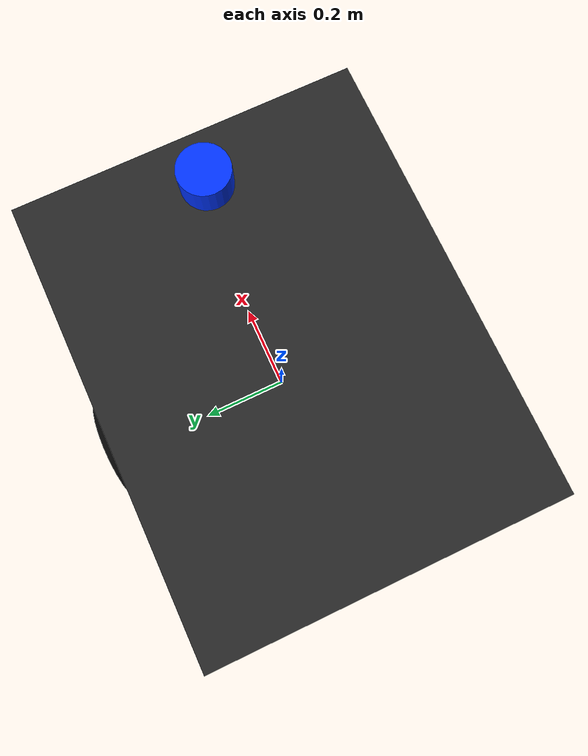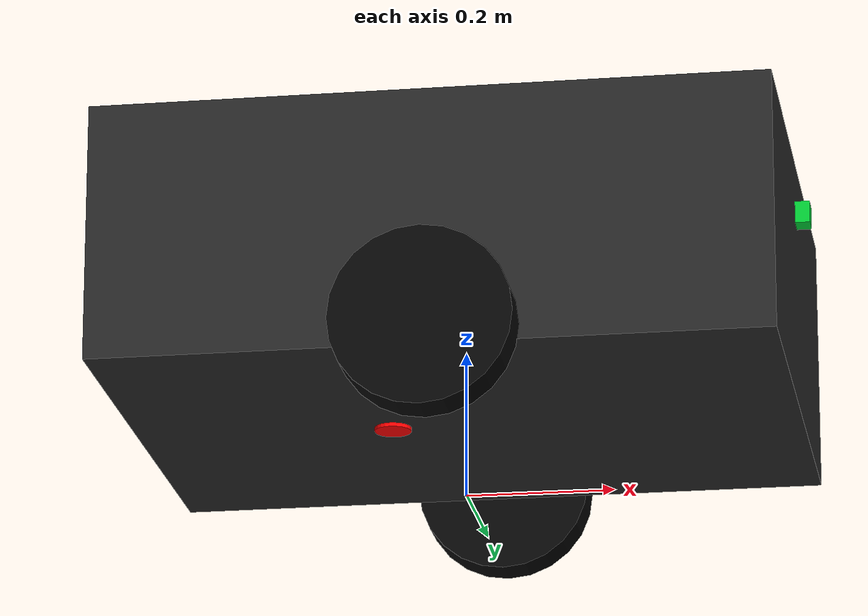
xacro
<?xml version="1.0"?>
<robot name="fre_robot_minimal" xmlns:xacro="http://www.ros.org/wiki/xacro">

  <!-- Basic dimensions       -->
  <xacro:property name="base_length" value="0.90"/>
  <xacro:property name="base_width"  value="0.70"/>
  <xacro:property name="base_height" value="0.35"/>

  <xacro:property name="wheel_radius" value="0.12"/>
  <xacro:property name="wheel_width"  value="0.06"/>
  <xacro:property name="wheel_separation" value="0.76"/>

  <!-- base_footprint         -->
  <link name="base_footprint"/>

  <joint name="base_footprint_to_base_link" type="fixed">
    <parent link="base_footprint"/>
    <child link="base_link"/>
    <origin xyz="0 0 0.275" rpy="0 0 0"/>
  </joint>

  <!-- base_link              -->
  <link name="base_link">
    <visual>
      <origin xyz="0 0 0" rpy="0 0 0"/>
      <geometry>
        <box size="${base_length} ${base_width} ${base_height}"/>
      </geometry>
      <material name="dark_gray">
        <color rgba="0.15 0.15 0.15 1.0"/>
      </material>
    </visual>

    <collision>
      <origin xyz="0 0 0" rpy="0 0 0"/>
      <geometry>
        <box size="${base_length} ${base_width} ${base_height}"/>
      </geometry>
    </collision>

    <inertial>
      <origin xyz="0 0 0"/>
      <mass value="25.0"/>
      <inertia ixx="1.5" ixy="0" ixz="0"
               iyy="1.5" iyz="0"
               izz="1.5"/>
    </inertial>
  </link>

  <!-- left wheel             -->
  <link name="left_wheel_link">
    <visual>
      <origin xyz="0 0 0" rpy="1.5708 0 0"/>
      <geometry>
        <cylinder radius="${wheel_radius}" length="${wheel_width}"/>
      </geometry>
      <material name="black">
        <color rgba="0.02 0.02 0.02 1.0"/>
      </material>
    </visual>

    <collision>
      <origin xyz="0 0 0" rpy="1.5708 0 0"/>
      <geometry>
        <cylinder radius="${wheel_radius}" length="${wheel_width}"/>
      </geometry>
    </collision>

    <inertial>
      <origin xyz="0 0 0"/>
      <mass value="1.0"/>
      <inertia ixx="0.01" ixy="0" ixz="0"
               iyy="0.01" iyz="0"
               izz="0.01"/>
    </inertial>
  </link>

  <joint name="left_wheel_joint" type="continuous">
    <parent link="base_link"/>
    <child link="left_wheel_link"/>
    <origin xyz="0.0 0.38 -0.155" rpy="0 0 0"/>
    <axis xyz="0 1 0"/>
  </joint>

  <!-- right wheel            -->
  <link name="right_wheel_link">
    <visual>
      <origin xyz="0 0 0" rpy="1.5708 0 0"/>
      <geometry>
        <cylinder radius="${wheel_radius}" length="${wheel_width}"/>
      </geometry>
      <material name="black">
        <color rgba="0.02 0.02 0.02 1.0"/>
      </material>
    </visual>

    <collision>
      <origin xyz="0 0 0" rpy="1.5708 0 0"/>
      <geometry>
        <cylinder radius="${wheel_radius}" length="${wheel_width}"/>
      </geometry>
    </collision>

    <inertial>
      <origin xyz="0 0 0"/>
      <mass value="1.0"/>
      <inertia ixx="0.01" ixy="0" ixz="0"
               iyy="0.01" iyz="0"
               izz="0.01"/>
    </inertial>
  </link>

  <joint name="right_wheel_joint" type="continuous">
    <parent link="base_link"/>
    <child link="right_wheel_link"/>
    <origin xyz="0.0 -0.38 -0.155" rpy="0 0 0"/>
    <axis xyz="0 1 0"/>
  </joint>

  <!-- lidar                  -->
  <link name="lidar_link">
    <visual>
      <geometry>
        <cylinder radius="0.05" length="0.06"/>
      </geometry>
      <material name="blue">
        <color rgba="0.0 0.2 1.0 1.0"/>
      </material>
    </visual>

    <collision>
      <geometry>
        <cylinder radius="0.05" length="0.06"/>
      </geometry>
    </collision>

    <inertial>
      <origin xyz="0 0 0"/>
      <mass value="0.2"/>
      <inertia ixx="0.001" ixy="0" ixz="0"
               iyy="0.001" iyz="0"
               izz="0.001"/>
    </inertial>
  </link>

  <joint name="base_link_to_lidar" type="fixed">
    <parent link="base_link"/>
    <child link="lidar_link"/>
    <origin xyz="0.32 0 0.25" rpy="0 0 0"/>
  </joint>

  <!-- front depth camera     -->
  <link name="front_camera_link">
    <visual>
      <geometry>
        <box size="0.08 0.03 0.03"/>
      </geometry>
      <material name="green">
        <color rgba="0.0 0.8 0.2 1.0"/>
      </material>
    </visual>

    <collision>
      <geometry>
        <box size="0.08 0.03 0.03"/>
      </geometry>
    </collision>

    <inertial>
      <origin xyz="0 0 0"/>
      <mass value="0.1"/>
      <inertia ixx="0.0005" ixy="0" ixz="0"
               iyy="0.0005" iyz="0"
               izz="0.0005"/>
    </inertial>
  </link>

  <joint name="base_link_to_front_camera" type="fixed">
    <parent link="base_link"/>
    <child link="front_camera_link"/>
    <origin xyz="0.43 0 0.10" rpy="0 0 0"/>
  </joint>

  <link name="front_camera_optical_frame"/>

  <joint name="front_camera_to_optical" type="fixed">
    <parent link="front_camera_link"/>
    <child link="front_camera_optical_frame"/>
    <!-- ROS optical frame convention: z forward, x right, y down -->
    <origin xyz="0 0 0" rpy="-1.5708 0 -1.5708"/>
  </joint>

  <!-- downward depth camera  -->
  <link name="down_camera_link">
    <visual>
      <geometry>
        <box size="0.08 0.03 0.03"/>
      </geometry>
      <material name="yellow">
        <color rgba="1.0 0.8 0.0 1.0"/>
      </material>
    </visual>

    <collision>
      <geometry>
        <box size="0.08 0.03 0.03"/>
      </geometry>
    </collision>

    <inertial>
      <origin xyz="0 0 0"/>
      <mass value="0.1"/>
      <inertia ixx="0.0005" ixy="0" ixz="0"
               iyy="0.0005" iyz="0"
               izz="0.0005"/>
    </inertial>
  </link>

  <joint name="base_link_to_down_camera" type="fixed">
    <parent link="base_link"/>
    <child link="down_camera_link"/>
    <origin xyz="0.15 0 0.05" rpy="0 1.5708 0"/>
  </joint>

  <link name="down_camera_optical_frame"/>

  <joint name="down_camera_to_optical" type="fixed">
    <parent link="down_camera_link"/>
    <child link="down_camera_optical_frame"/>
    <origin xyz="0 0 0" rpy="-1.5708 0 -1.5708"/>
  </joint>

  <!-- treatment tool/nozzle  -->
  <link name="treatment_tool_link">
    <visual>
      <geometry>
        <cylinder radius="0.025" length="0.12"/>
      </geometry>
      <material name="red">
        <color rgba="1.0 0.0 0.0 1.0"/>
      </material>
    </visual>

    <collision>
      <geometry>
        <cylinder radius="0.025" length="0.12"/>
      </geometry>
    </collision>

    <inertial>
      <origin xyz="0 0 0"/>
      <mass value="0.1"/>
      <inertia ixx="0.0005" ixy="0" ixz="0"
               iyy="0.0005" iyz="0"
               izz="0.0005"/>
    </inertial>
  </link>

  <joint name="base_link_to_treatment_tool" type="fixed">
    <parent link="base_link"/>
    <child link="treatment_tool_link"/>
    <origin xyz="-0.10 0 -0.12" rpy="0 0 0"/>
  </joint>

  <!-- Gazebo visual/friction -->
  <gazebo reference="base_link">
    <material>Gazebo/DarkGrey</material>
  </gazebo>

  <gazebo reference="left_wheel_link">
    <material>Gazebo/Black</material>
    <mu1>5.0</mu1>
    <mu2>5.0</mu2>
    <kp>1000000.0</kp>
    <kd>10.0</kd>
  </gazebo>

  <gazebo reference="right_wheel_link">
    <material>Gazebo/Black</material>
    <mu1>5.0</mu1>
    <mu2>5.0</mu2>
    <kp>1000000.0</kp>
    <kd>10.0</kd>
  </gazebo>

  <gazebo reference="lidar_link">
    <material>Gazebo/Blue</material>
  </gazebo>

  <gazebo reference="front_camera_link">
    <material>Gazebo/Green</material>
  </gazebo>

  <gazebo reference="down_camera_link">
    <material>Gazebo/Yellow</material>
  </gazebo>

  <gazebo reference="treatment_tool_link">
    <material>Gazebo/Red</material>
  </gazebo>

  <!-- Differential drive     -->
  <gazebo>
    <plugin name="fre_diff_drive" filename="libgazebo_ros_diff_drive.so">
      <legacyMode>false</legacyMode>

      <leftJoint>left_wheel_joint</leftJoint>
      <rightJoint>right_wheel_joint</rightJoint>

      <wheelSeparation>${wheel_separation}</wheelSeparation>
      <wheelDiameter>${2.0 * wheel_radius}</wheelDiameter>

      <wheelTorque>80</wheelTorque>
      <wheelAcceleration>5.0</wheelAcceleration>

      <commandTopic>cmd_vel</commandTopic>
      <odometryTopic>odom</odometryTopic>
      <odometryFrame>odom</odometryFrame>
      <robotBaseFrame>base_footprint</robotBaseFrame>

      <publishTf>true</publishTf>
      <publishOdomTF>true</publishOdomTF>
      <publishWheelTF>false</publishWheelTF>
      <publishWheelJointState>true</publishWheelJointState>

      <odometrySource>world</odometrySource>
      <updateRate>50</updateRate>

      <rosDebugLevel>na</rosDebugLevel>
    </plugin>
  </gazebo>

</robot>
